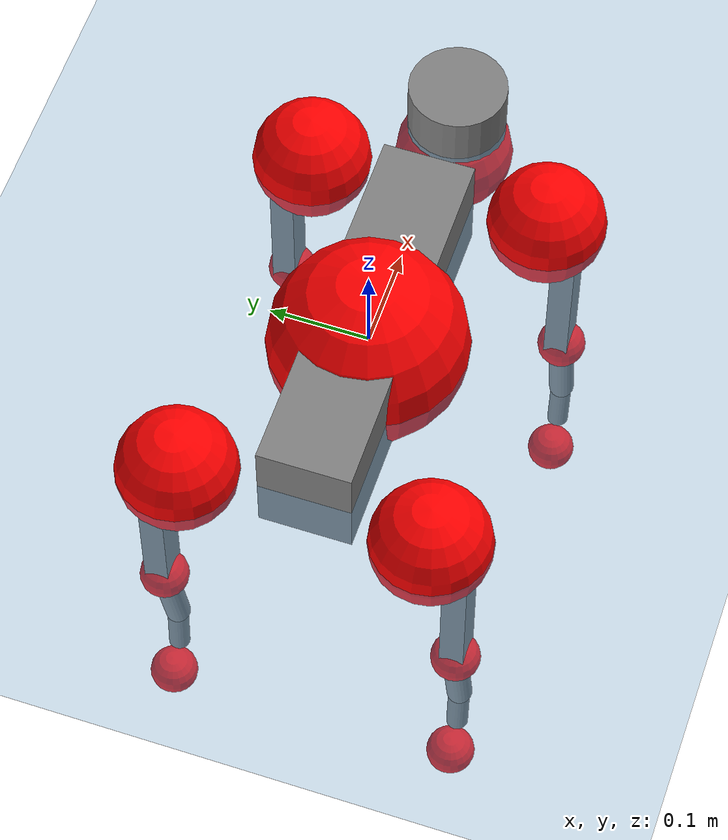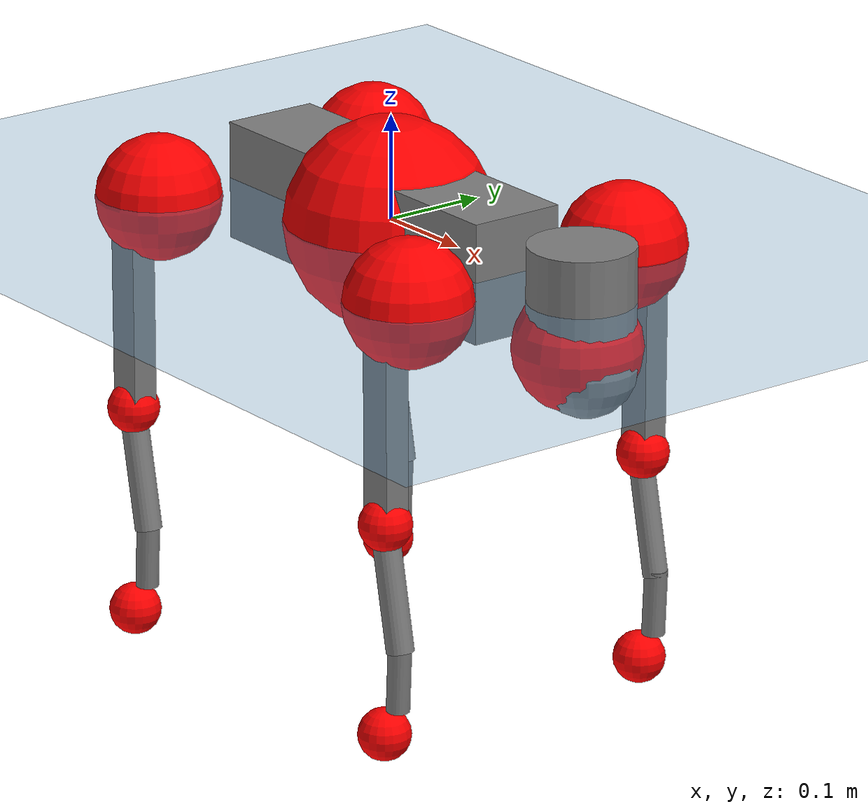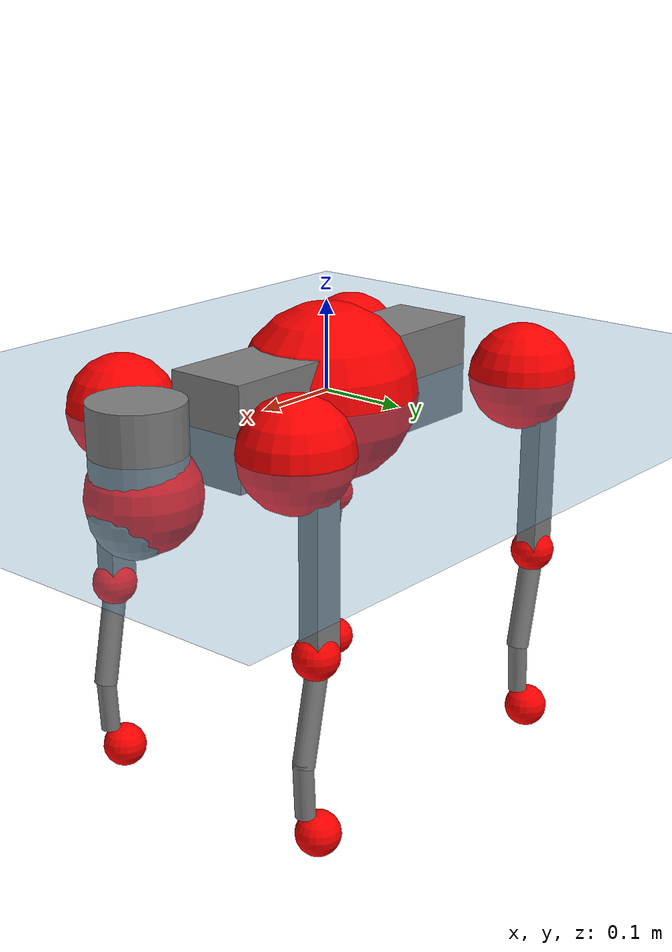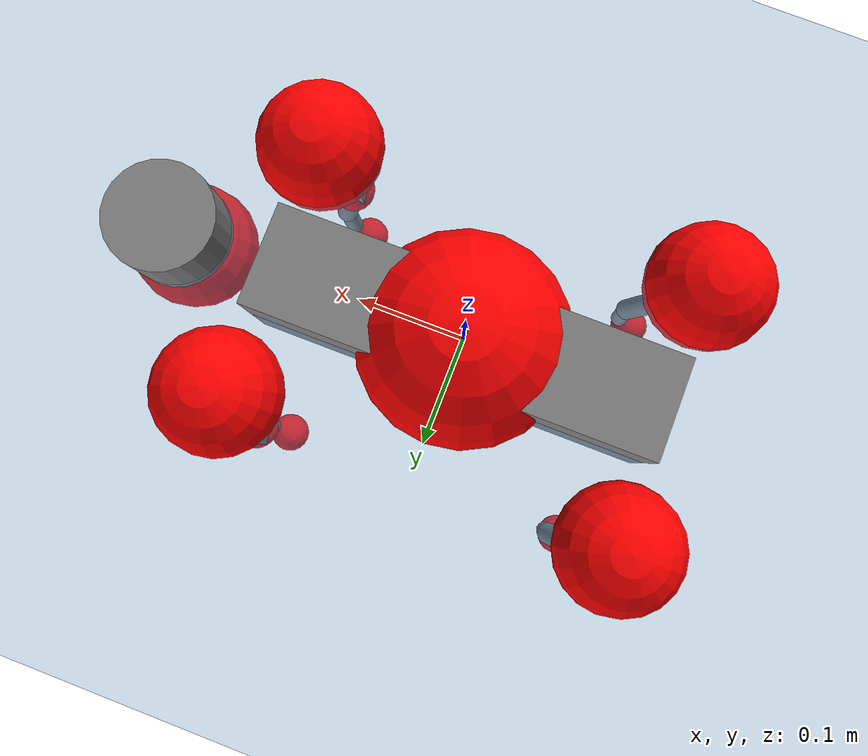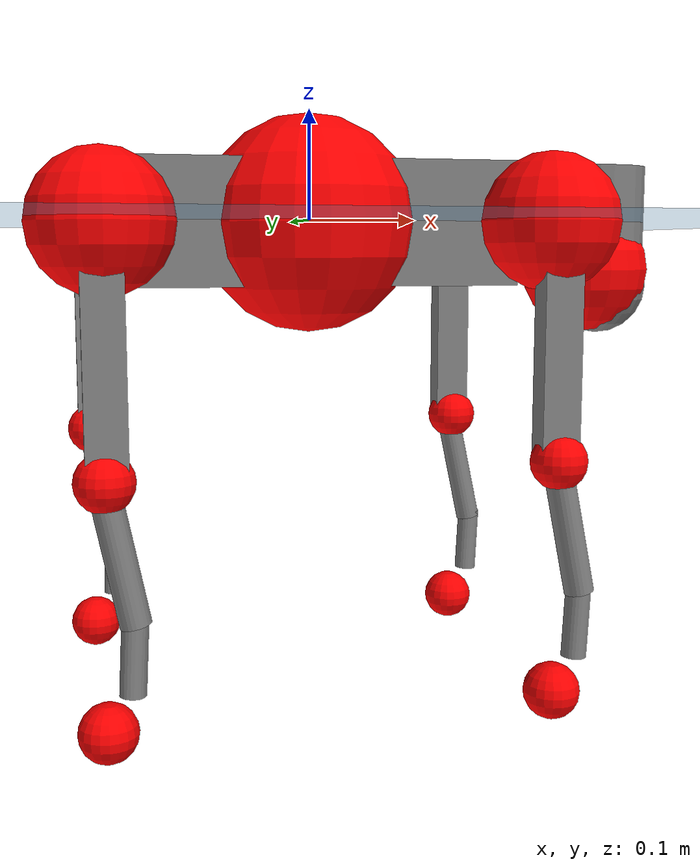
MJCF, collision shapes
<mujoco model="go2">
  <compiler angle="radian" assetdir="assets" balanceinertia="true" inertiafromgeom="false"/>

  <option timestep="0.005" density="1.2" viscosity="2e-05"/>

  <size nkey="1"/>

  <visual>
    <quality shadowsize="8192"/>
    <map shadowclip="0.5"/>
  </visual>

  <default>
    <default class="/">
      <geom contype="0" conaffinity="0" group="1" solref="-1000 -80"/>
      <site size="0.01 0.005 0.005" group="5"/>
      <general forcelimited="true" biastype="affine" gainprm="20" biasprm="0 -20 -0.5"/>
      <default class="go2">
        <joint armature="0.01" damping="0.01" frictionloss="0.2"/>
        <geom condim="1" margin="0.001"/>
        <default class="visual">
          <geom type="mesh" group="2"/>
        </default>
        <default class="collision">
          <geom group="3"/>
          <default class="foot">
            <geom size="0.022 0 0" condim="6" priority="1" friction="0.8 0.02 0.01" solimp="0.015 1 0.022"/>
          </default>
        </default>
        <default class="reward_collision_sphere">
          <geom group="5" rgba="1 0 0 1"/>
        </default>
      </default>
    </default>
  </default>

  <asset>
    <texture type="skybox" colorspace="auto" name="//unnamed_texture_0" builtin="gradient" rgb1="0.95 0.95 0.95" rgb2="0.95 0.95 0.95" width="100" height="600"/>
    <texture type="2d" colorspace="auto" name="texplane" builtin="checker" rgb1="0.345 0.575 0.748" rgb2="0.345 0.575 0.748" markrgb="1 1 1" width="512" height="512"/>
    <material name="MatPlane" class="/" texture="texplane" texuniform="true" texrepeat="2 2" specular="0.9"/>
    <material name="metal" class="/" rgba="0.9 0.95 0.95 1"/>
    <material name="black" class="/" rgba="0 0 0 1"/>
    <material name="white" class="/"/>
    <material name="gray" class="/" rgba="0.671705 0.692426 0.77427 1"/>
    <mesh name="base_0" class="/" file="base_0.obj"/>
    <mesh name="base_1" class="/" file="base_1.obj"/>
    <mesh name="base_2" class="/" file="base_2.obj"/>
    <mesh name="base_3" class="/" file="base_3.obj"/>
    <mesh name="base_4" class="/" file="base_4.obj"/>
    <mesh name="hip_0" class="/" file="hip_0.obj"/>
    <mesh name="hip_1" class="/" file="hip_1.obj"/>
    <mesh name="thigh_0" class="/" file="thigh_0.obj"/>
    <mesh name="thigh_1" class="/" file="thigh_1.obj"/>
    <mesh name="thigh_mirror_0" class="/" file="thigh_mirror_0.obj"/>
    <mesh name="thigh_mirror_1" class="/" file="thigh_mirror_1.obj"/>
    <mesh name="calf_0" class="/" file="calf_0.obj"/>
    <mesh name="calf_1" class="/" file="calf_1.obj"/>
    <mesh name="calf_mirror_0" class="/" file="calf_mirror_0.obj"/>
    <mesh name="calf_mirror_1" class="/" file="calf_mirror_1.obj"/>
    <mesh name="foot" class="/" file="foot.obj"/>
  </asset>

  <worldbody>
    <geom name="floor" class="/" size="100 100 0.125" type="plane" group="0" material="MatPlane"/>
    <light name="toplight_shadow" class="/" pos="0 0 5" dir="0.0990148 0.0990148 -0.990148" type="directional" ambient="0.04 0.04 0.04" diffuse="0.55 0.55 0.55" specular="0.12 0.12 0.12"/>
    <light name="toplight_fill" class="/" pos="0 0 5" dir="0.0990148 0.0990148 -0.990148" type="directional" castshadow="false" ambient="0.04 0.04 0.04" diffuse="0.3 0.3 0.3" specular="0.08 0.08 0.08"/>
    <body name="trunk" childclass="go2" pos="-0.000979276 0.000254018 -0.00279588" quat="1 0.000522988 -8.63049e-05 3.45269e-05">
      <inertial pos="0.0177025 -0.00277405 -0.00350226" quat="-0.0043074 0.71143 -0.00150926 0.702742" mass="6.90737" diaginertia="0.102668 0.128201 0.0206586"/>
      <joint name="//unnamed_joint_0" type="free" armature="0" damping="0" frictionloss="0"/>
      <geom name="//unnamed_geom_1" class="visual" material="black" mesh="base_0"/>
      <geom name="//unnamed_geom_2" class="visual" material="black" mesh="base_1"/>
      <geom name="//unnamed_geom_3" class="visual" material="black" mesh="base_2"/>
      <geom name="//unnamed_geom_4" class="visual" material="white" mesh="base_3"/>
      <geom name="//unnamed_geom_5" class="visual" material="gray" mesh="base_4"/>
      <geom name="trunk_1" class="collision" size="0.187256 0.0465403 0.0567443" type="box"/>
      <geom name="trunk_2" class="collision" size="0.0497757 0.0447981" pos="0.279522 0 0.00957882" type="cylinder"/>
      <geom name="trunk_3" class="collision" size="0.0467891" pos="0.287368 0 -0.0574729"/>
      <geom name="//unnamed_geom_9" class="reward_collision_sphere" size="0.0995514"/>
      <geom name="//unnamed_geom_10" class="reward_collision_sphere" size="0.0597308" pos="0.274618 0 -0.0431047"/>
      <site name="imu" pos="-0.0341724 0.00510559 0.0534456" size="0.00995514"/>
      <camera name="track" pos="0 -2.09576 0" quat="0.707107 0.707107 0 0" mode="trackcom"/>
      <camera name="ego_camera" pos="0.306003 0 0.0431047" quat="-0.5 -0.5 0.5 0.5"/>
      <body name="FL_hip" pos="0.187991 0.0484866 0.00294231" quat="1 -0.000311719 0.000666455 0.000538239">
        <inertial pos="-0.00278619 0.000423049 0.000748648" quat="0.498087 0.501336 0.495155 0.505365" mass="0.650447" diaginertia="0.000781398 0.000750319 0.000391698"/>
        <joint name="FL_hip_joint" pos="0 0 0" axis="0.999908 -0.0125921 -0.00512959" stiffness="0.00324937" range="-1.02931 1.09802" armature="0.0110445" damping="0.00871042" frictionloss="0.206782"/>
        <geom name="//unnamed_geom_11" class="visual" material="metal" mesh="hip_0"/>
        <geom name="//unnamed_geom_12" class="visual" material="gray" mesh="hip_1"/>
        <geom name="//unnamed_geom_13" class="collision" size="0.0457936 0.0199103" pos="0 0.0838306 0" quat="0.707107 0.707107 0 0" type="cylinder"/>
        <geom name="//unnamed_geom_14" class="reward_collision_sphere" size="0.0597308" pos="0 0.0733518 0"/>
        <body name="FL_thigh" pos="-0.00110775 0.101304 0.000596313" quat="1 -1.19591e-05 -0.000651642 -3.74904e-06">
          <inertial pos="-0.00217827 -0.0229925 -0.0288052" quat="0.829869 0.0855958 -0.0203316 0.550979" mass="1.16288" diaginertia="0.00518785 0.00732474 0.000709136"/>
          <joint name="FL_thigh_joint" pos="0 0 0" axis="0.000102868 1 -0.000115323" range="-1.56859 3.48738" armature="0.00955893" damping="0.00638156" frictionloss="0.173482"/>
          <geom name="//unnamed_geom_15" class="visual" material="metal" mesh="thigh_0"/>
          <geom name="//unnamed_geom_16" class="visual" material="gray" mesh="thigh_1"/>
          <geom name="//unnamed_geom_17" class="collision" size="0.106022 0.012195 0.0169237" pos="0 0 -0.102014" quat="0.707107 0 0.707107 0" type="box"/>
          <body name="FL_calf" pos="0.00264216 -0.00227959 -0.206208" quat="0.999999 0.00102486 -0.000594918 -0.000921367">
            <inertial pos="0.00633147 -0.00109357 -0.135095" quat="0.710692 0.00149376 -0.00442094 0.703488" mass="0.231953" diaginertia="0.00131371 0.00184002 4.1809e-05"/>
            <joint name="FL_calf_joint" pos="0 0 0" axis="-0.010188 0.999839 0.0147832" range="-2.77959 -0.809885" armature="0.0110401" damping="0" frictionloss="0.225848"/>
            <geom name="//unnamed_geom_18" class="visual" material="gray" mesh="calf_0"/>
            <geom name="//unnamed_geom_19" class="visual" material="black" mesh="calf_1"/>
            <geom name="FL_calf0" class="collision" size="0.0119462 0.0597308" pos="0.00784622 0 -0.0574729" quat="0.994493 0 -0.104807 0" type="cylinder"/>
            <geom name="//unnamed_geom_21" class="collision" size="0.0109507 0.0323542" pos="0.0196155 0 -0.141767" quat="0.999688 0 0.0249974 0" type="cylinder"/>
            <geom name="//unnamed_geom_22" class="visual" pos="0 0 -0.204029" quat="1 0 0 0" material="black" mesh="foot"/>
            <geom name="FL_foot" class="foot" size="0.0162082" pos="-0.00196155 0 -0.204029"/>
            <geom name="//unnamed_geom_24" class="reward_collision_sphere" size="0.0248878"/>
            <geom name="//unnamed_geom_25" class="reward_collision_sphere" size="0.0248878" pos="-0.00196155 0 -0.204029"/>
            <site name="FL_foot" class="foot" pos="-0.00196155 0 -0.204029" size="0.00995514"/>
          </body>
        </body>
      </body>
      <body name="FR_hip" pos="0.187567 -0.048759 0.000222832" quat="1 9.71092e-05 2.9631e-05 9.93472e-05">
        <inertial pos="-0.00257265 -0.000975175 -0.00125217" quat="0.498762 0.506364 0.499854 0.494952" mass="0.691596" diaginertia="0.000810693 0.000801712 0.000398723"/>
        <joint name="FR_hip_joint" pos="0 0 0" axis="0.999979 -0.00344503 -0.0054405" stiffness="0.00194426" range="-1.09965 1.03041" armature="0.00869896" damping="0.00701076" frictionloss="0.173776"/>
        <geom name="//unnamed_geom_26" class="visual" pos="0 7.84045e-10 3.36293e-08" quat="4.63268e-05 1 0 0" material="metal" mesh="hip_0"/>
        <geom name="//unnamed_geom_27" class="visual" pos="0 1.27103e-09 -8.31782e-08" quat="4.63268e-05 1 0 0" material="gray" mesh="hip_1"/>
        <geom name="//unnamed_geom_28" class="collision" size="0.0457936 0.0199103" pos="0 -0.0838306 0" quat="0.707107 0.707107 0 0" type="cylinder"/>
        <geom name="//unnamed_geom_29" class="reward_collision_sphere" size="0.0597308" pos="0 -0.0733518 0"/>
        <body name="FR_thigh" pos="-0.0014368 -0.0975449 -0.00186472" quat="1 0.000232591 -0.000154708 -0.000114093">
          <inertial pos="-0.00356099 0.0225141 -0.0302028" quat="0.550726 -0.0272443 0.0737235 0.830978" mass="1.06553" diaginertia="0.00514353 0.00735787 0.000700036"/>
          <joint name="FR_thigh_joint" pos="0 0 0" axis="0.00711525 -0.999938 -0.00861278" range="-3.45318 1.62402" armature="0.0100878" damping="0" frictionloss="0.212349"/>
          <geom name="//unnamed_geom_30" class="visual" material="metal" mesh="thigh_mirror_0"/>
          <geom name="//unnamed_geom_31" class="visual" material="gray" mesh="thigh_mirror_1"/>
          <geom name="//unnamed_geom_32" class="collision" size="0.106022 0.012195 0.0169237" pos="0 0 -0.102014" quat="0.707107 0 0.707107 0" type="box"/>
          <body name="FR_calf" pos="0.00230292 -0.00213826 -0.202343" quat="1 0.000111361 -2.83917e-05 -0.000234702">
            <inertial pos="0.00565545 0.00120877 -0.133188" quat="0.695904 0.000713599 0.00544678 0.718113" mass="0.241921" diaginertia="0.00132455 0.00179161 4.27156e-05"/>
            <joint name="FR_calf_joint" pos="0 0 0" axis="-0.00480413 -0.999962 0.00731904" range="0.786165 2.7765" armature="0.00962516" damping="0.00450671" frictionloss="0.178514"/>
            <geom name="//unnamed_geom_33" class="visual" material="gray" mesh="calf_mirror_0"/>
            <geom name="//unnamed_geom_34" class="visual" material="black" mesh="calf_mirror_1"/>
            <geom name="FR_calf0" class="collision" size="0.0129417 0.0597308" pos="0.00980777 0 -0.0574729" quat="0.995004 0 -0.0998334 0" type="cylinder"/>
            <geom name="//unnamed_geom_36" class="collision" size="0.0109507 0.0323542" pos="0.0196155 0 -0.141767" quat="0.999688 0 0.0249974 0" type="cylinder"/>
            <geom name="//unnamed_geom_37" class="visual" pos="0 0 -0.204029" quat="1 0 0 0" material="black" mesh="foot"/>
            <geom name="FR_foot" class="foot" size="0.021527" pos="-0.00196155 0 -0.204029"/>
            <geom name="//unnamed_geom_39" class="reward_collision_sphere" size="0.0248878"/>
            <geom name="//unnamed_geom_40" class="reward_collision_sphere" size="0.0248878" pos="-0.00196155 0 -0.204029"/>
            <site name="FR_foot" class="foot" pos="-0.00196155 0 -0.204029" size="0.00995514"/>
          </body>
        </body>
      </body>
      <body name="RL_hip" pos="-0.191536 0.0508417 2.66932e-05" quat="1 0.000464972 0.000136688 7.78881e-05">
        <inertial pos="0.00699362 0.00471435 -0.00102705" quat="0.514619 0.490594 0.499666 0.494791" mass="0.669254" diaginertia="0.000766172 0.00074607 0.000361935"/>
        <joint name="RL_hip_joint" pos="0 0 0" axis="-0.999998 0.00152652 0.00106136" range="-1.02525 1.0195" armature="0.00858073" damping="0" frictionloss="0.201713"/>
        <geom name="//unnamed_geom_41" class="visual" pos="-1.99455e-10 0 -3.90977e-08" quat="4.63268e-05 0 1 0" material="metal" mesh="hip_0"/>
        <geom name="//unnamed_geom_42" class="visual" pos="-3.2334e-10 0 -3.46741e-08" quat="4.63268e-05 0 1 0" material="gray" mesh="hip_1"/>
        <geom name="//unnamed_geom_43" class="collision" size="0.0457936 0.0199103" pos="0 0.0838306 0" quat="0.707107 0.707107 0 0" type="cylinder"/>
        <geom name="//unnamed_geom_44" class="reward_collision_sphere" size="0.0597308" pos="0 0.0733518 0"/>
        <body name="RL_thigh" pos="-0.00264708 0.0979754 -0.000722192" quat="1 -1.33231e-06 7.5795e-07 -1.27739e-06">
          <inertial pos="-0.00395545 -0.0203319 -0.0304173" quat="0.830763 0.0883229 -0.0205201 0.549191" mass="1.13397" diaginertia="0.00540593 0.00714192 0.000713015"/>
          <joint name="RL_thigh_joint" pos="0 0 0" axis="-0.00750483 0.999972 -0.000102829" stiffness="0.0143811" range="-0.516407 4.56212" armature="0.00888091" damping="0" frictionloss="0.209479"/>
          <geom name="//unnamed_geom_45" class="visual" material="metal" mesh="thigh_0"/>
          <geom name="//unnamed_geom_46" class="visual" material="gray" mesh="thigh_1"/>
          <geom name="//unnamed_geom_47" class="collision" size="0.106022 0.012195 0.0169237" pos="0 0 -0.102014" quat="0.707107 0 0.707107 0" type="box"/>
          <body name="RL_calf" pos="-0.00245934 -0.00256035 -0.205618" quat="1 5.87577e-05 -0.000535915 0.000129629">
            <inertial pos="0.00619132 -0.000632252 -0.134801" quat="0.706157 -0.00127393 -0.00527653 0.708034" mass="0.239689" diaginertia="0.00134715 0.00183464 4.21322e-05"/>
            <joint name="RL_calf_joint" pos="0 0 0" axis="0.00353331 0.999988 -0.00330622" range="-2.72218 -0.838814" armature="0.00866168" damping="0.00537486" frictionloss="0.226454"/>
            <geom name="//unnamed_geom_48" class="visual" material="gray" mesh="calf_0"/>
            <geom name="//unnamed_geom_49" class="visual" material="black" mesh="calf_1"/>
            <geom name="RL_calf0" class="collision" size="0.0129417 0.0597308" pos="0.00980777 0 -0.0574729" quat="0.995004 0 -0.0998334 0" type="cylinder"/>
            <geom name="//unnamed_geom_51" class="collision" size="0.0109507 0.0323542" pos="0.0196155 0 -0.141767" quat="0.999688 0 0.0249974 0" type="cylinder"/>
            <geom name="//unnamed_geom_52" class="visual" pos="0 0 -0.204029" quat="1 0 0 0" material="black" mesh="foot"/>
            <geom name="RL_foot" class="foot" size="0.0185243" pos="-0.00196155 0 -0.204029"/>
            <geom name="//unnamed_geom_54" class="reward_collision_sphere" size="0.0248878"/>
            <geom name="//unnamed_geom_55" class="reward_collision_sphere" size="0.0248878" pos="-0.00196155 0 -0.204029"/>
            <site name="RL_foot" class="foot" pos="-0.00196155 0 -0.204029" size="0.00995514"/>
          </body>
        </body>
      </body>
      <body name="RR_hip" pos="-0.190919 -0.0517538 -0.00186501" quat="0.999999 -0.000929593 -0.00101056 0.000317868">
        <inertial pos="0.00292634 -0.0024028 0.00254482" quat="0.498831 0.496655 0.498225 0.506234" mass="0.652905" diaginertia="0.000785556 0.000731056 0.000367088"/>
        <joint name="RR_hip_joint" pos="0 0 0" axis="-1 -1.76926e-05 -0.000649749" range="-1.09973 1.08365" armature="0.00981585" damping="0" frictionloss="0.201081"/>
        <geom name="//unnamed_geom_56" class="visual" pos="2.01778e-10 7.84045e-10 -7.2727e-08" quat="2.14617e-09 4.63268e-05 4.63268e-05 -1" material="metal" mesh="hip_0"/>
        <geom name="//unnamed_geom_57" class="visual" pos="3.17593e-10 1.27103e-09 4.85041e-08" quat="2.14617e-09 4.63268e-05 4.63268e-05 -1" material="gray" mesh="hip_1"/>
        <geom name="//unnamed_geom_58" class="collision" size="0.0457936 0.0199103" pos="0 -0.0838306 0" quat="0.707107 0.707107 0 0" type="cylinder"/>
        <geom name="//unnamed_geom_59" class="reward_collision_sphere" size="0.0597308" pos="0 -0.0733518 0"/>
        <body name="RR_thigh" pos="-0.00144408 -0.102627 0.00149922" quat="1 0.000252905 0.000324244 9.67009e-06">
          <inertial pos="-0.000753335 0.0238707 -0.0321249" quat="0.552081 -0.019682 0.0841077 0.829304" mass="1.08634" diaginertia="0.00511648 0.00722403 0.000691338"/>
          <joint name="RR_thigh_joint" pos="0 0 0" axis="0.0181497 -0.999833 -0.00201954" range="-4.54506 0.524987" armature="0.0092382" damping="0.0069015" frictionloss="0.203259"/>
          <geom name="//unnamed_geom_60" class="visual" material="metal" mesh="thigh_mirror_0"/>
          <geom name="//unnamed_geom_61" class="visual" material="gray" mesh="thigh_mirror_1"/>
          <geom name="//unnamed_geom_62" class="collision" size="0.106022 0.012195 0.0169237" pos="0 0 -0.102014" quat="0.707107 0 0.707107 0" type="box"/>
          <body name="RR_calf" pos="-0.00203497 -0.000524394 -0.204289" quat="1 -0.00044083 0.00037549 0.000778737">
            <inertial pos="0.0045458 0.000510555 -0.136034" quat="0.697059 -0.00807238 -0.00802807 0.716923" mass="0.232351" diaginertia="0.00129687 0.00189173 4.22518e-05"/>
            <joint name="RR_calf_joint" pos="0 0 0" axis="-0.00273231 -0.999996 0.000206794" stiffness="0.0116884" range="0.850228 2.71623" armature="0.00894479" damping="0.0185587" frictionloss="0.197766"/>
            <geom name="//unnamed_geom_63" class="visual" material="gray" mesh="calf_mirror_0"/>
            <geom name="//unnamed_geom_64" class="visual" material="black" mesh="calf_mirror_1"/>
            <geom name="RR_calf0" class="collision" size="0.0129417 0.0597308" pos="0.00980777 0 -0.0574729" quat="0.995004 0 -0.0998334 0" type="cylinder"/>
            <geom name="//unnamed_geom_66" class="collision" size="0.0109507 0.0323542" pos="0.0196155 0 -0.141767" quat="0.999688 0 0.0249974 0" type="cylinder"/>
            <geom name="//unnamed_geom_67" class="visual" pos="0 0 -0.204029" quat="1 0 0 0" material="black" mesh="foot"/>
            <geom name="RR_foot" class="foot" size="0.0197583" pos="-0.00196155 0 -0.204029"/>
            <geom name="//unnamed_geom_69" class="reward_collision_sphere" size="0.0248878"/>
            <geom name="//unnamed_geom_70" class="reward_collision_sphere" size="0.0248878" pos="-0.00196155 0 -0.204029"/>
            <site name="RR_foot" class="foot" pos="-0.00196155 0 -0.204029" size="0.00995514"/>
          </body>
        </body>
      </body>
    </body>
  </worldbody>

  <contact>
    <pair class="/" geom1="floor" geom2="FL_foot" name="//unnamed_contact_0"/>
    <pair class="/" geom1="floor" geom2="FR_foot" name="//unnamed_contact_1"/>
    <pair class="/" geom1="floor" geom2="RL_foot" name="//unnamed_contact_2"/>
    <pair class="/" geom1="floor" geom2="RR_foot" name="//unnamed_contact_3"/>
  </contact>

  <actuator>
    <general name="FL_hip" class="/" joint="FL_hip_joint" forcerange="-24.3532 24.3532" gainprm="19.8299" biasprm="0 -19.8299 -0.494317"/>
    <general name="FL_thigh" class="/" joint="FL_thigh_joint" forcerange="-21.3735 21.3735" gainprm="19.8299" biasprm="0 -19.8299 -0.494317"/>
    <general name="FL_calf" class="/" joint="FL_calf_joint" forcerange="-45.1674 45.1674" gainprm="19.8299" biasprm="0 -19.8299 -0.494317"/>
    <general name="FR_hip" class="/" joint="FR_hip_joint" forcerange="-21.2118 21.2118" gainprm="19.8299" biasprm="0 -19.8299 -0.494317"/>
    <general name="FR_thigh" class="/" joint="FR_thigh_joint" forcerange="-25.2426 25.2426" gainprm="19.8299" biasprm="0 -19.8299 -0.494317"/>
    <general name="FR_calf" class="/" joint="FR_calf_joint" forcerange="-40.5055 40.5055" gainprm="19.8299" biasprm="0 -19.8299 -0.494317"/>
    <general name="RL_hip" class="/" joint="RL_hip_joint" forcerange="-23.5043 23.5043" gainprm="19.8299" biasprm="0 -19.8299 -0.494317"/>
    <general name="RL_thigh" class="/" joint="RL_thigh_joint" forcerange="-21.3909 21.3909" gainprm="19.8299" biasprm="0 -19.8299 -0.494317"/>
    <general name="RL_calf" class="/" joint="RL_calf_joint" forcerange="-45.5986 45.5986" gainprm="19.8299" biasprm="0 -19.8299 -0.494317"/>
    <general name="RR_hip" class="/" joint="RR_hip_joint" forcerange="-22.7848 22.7848" gainprm="19.8299" biasprm="0 -19.8299 -0.494317"/>
    <general name="RR_thigh" class="/" joint="RR_thigh_joint" forcerange="-21.706 21.706" gainprm="19.8299" biasprm="0 -19.8299 -0.494317"/>
    <general name="RR_calf" class="/" joint="RR_calf_joint" forcerange="-49.8098 49.8098" gainprm="19.8299" biasprm="0 -19.8299 -0.494317"/>
  </actuator>

  <sensor>
    <gyro site="imu" name="imu_angular_velocity"/>
    <velocimeter site="imu" name="imu_linear_velocity"/>
    <framelinvel objtype="site" objname="FL_foot" name="FL_foot_global_linear_velocity"/>
    <framelinvel objtype="site" objname="FR_foot" name="FR_foot_global_linear_velocity"/>
    <framelinvel objtype="site" objname="RL_foot" name="RL_foot_global_linear_velocity"/>
    <framelinvel objtype="site" objname="RR_foot" name="RR_foot_global_linear_velocity"/>
  </sensor>

  <keyframe>
    <key name="home" qpos="0 0 0.325 1 0 0 0 0.1 0.8 -1.5 -0.1 -0.8 1.5 -0.1 0.8 -1.5 0.1 -0.8 1.5"/>
  </keyframe>
</mujoco>
